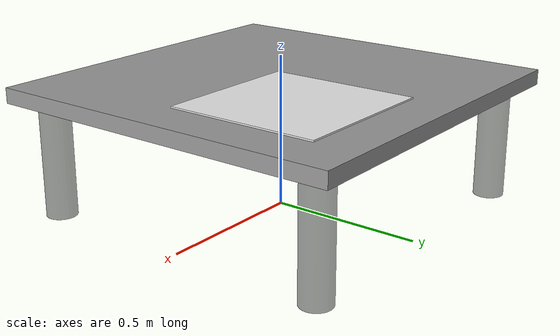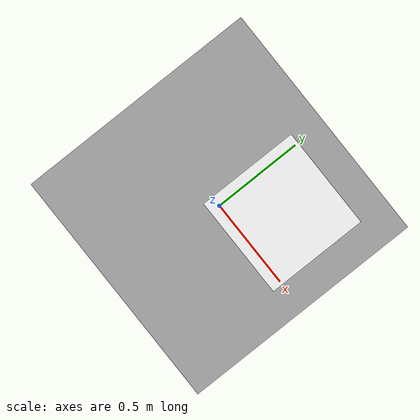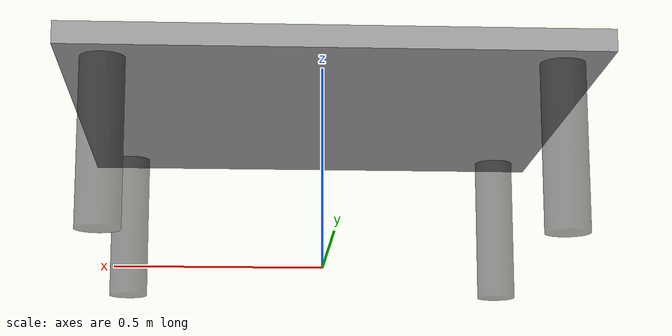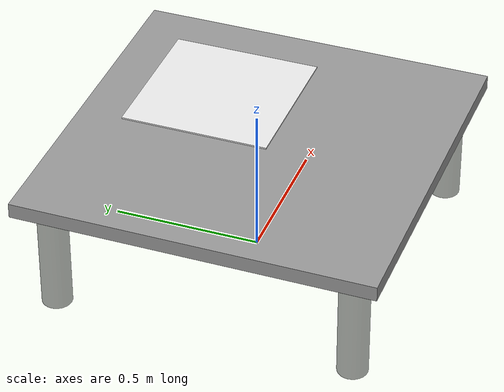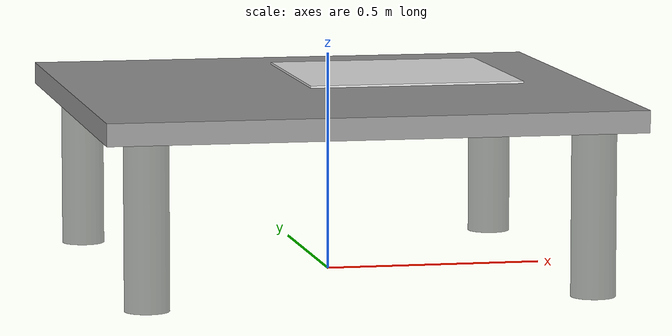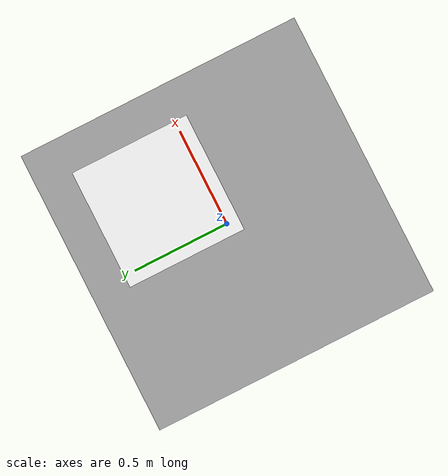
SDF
<?xml version="1.0" ?>
<sdf version="1.6">
  <model name="work_table">
    <static>true</static> <!-- Table and drop zone are static -->

    <!-- Table Link -->
    <link name="table">
      <!-- Tabletop -->
      <visual name="visual_tabletop">
        <geometry>
          <box>
            <size>1.2 1.2 0.05</size> <!-- Table dimensions -->
          </box>
        </geometry>
        <pose>0 0 0.4 0 0 0</pose> <!-- Table height -->
        <material>
          <script>
            <name>Gazebo/Grey</name>
          </script>
          <ambient>0.5 0.5 0.5 1</ambient>
          <diffuse>0.8 0.8 0.8 1</diffuse>
          <specular>0.2 0.2 0.2 1</specular>
        </material>
      </visual>
      <collision name="collision_tabletop">
        <geometry>
          <box>
            <size>1.2 1.2 0.05</size>
          </box>
        </geometry>
        <pose>0 0 0.4 0 0 0</pose>
      </collision>

      <!-- Table Legs -->
      <visual name="visual_leg_1">
        <geometry>
          <cylinder>
            <radius>0.05</radius> <!-- Leg radius -->
            <length>0.4</length> <!-- Leg height -->
          </cylinder>
        </geometry>
        <pose>-0.5 -0.5 0.2 0 0 0</pose> <!-- Back left corner -->
        <material>
          <script>
            <name>Gazebo/BlackTransparent</name>
          </script>
        </material>
      </visual>
      <visual name="visual_leg_2">
        <geometry>
          <cylinder>
            <radius>0.05</radius>
            <length>0.4</length>
          </cylinder>
        </geometry>
        <pose>0.5 -0.5 0.2 0 0 0</pose> <!-- Back right corner -->
        <material>
          <script>
            <name>Gazebo/BlackTransparent</name>
          </script>
        </material>
      </visual>
      <visual name="visual_leg_3">
        <geometry>
          <cylinder>
            <radius>0.05</radius>
            <length>0.4</length>
          </cylinder>
        </geometry>
        <pose>-0.5 0.5 0.2 0 0 0</pose> <!-- Front left corner -->
        <material>
          <script>
            <name>Gazebo/BlackTransparent</name>
          </script>
        </material>
      </visual>
      <visual name="visual_leg_4">
        <geometry>
          <cylinder>
            <radius>0.05</radius>
            <length>0.4</length>
          </cylinder>
        </geometry>
        <pose>0.5 0.5 0.2 0 0 0</pose> <!-- Front right corner -->
        <material>
          <script>
            <name>Gazebo/BlackTransparent</name>
          </script>
        </material>
      </visual>

      <!-- Drop Zone -->
      <visual name="visual_drop_zone">
        <geometry>
          <box>
            <size>0.5 0.5 0.01</size> <!-- Drop zone dimensions -->
          </box>
        </geometry>
        <pose>0.2 0.2 0.425 0 0 0</pose> <!-- Positioned at the right corner -->
        <material>
          <script>
            <name>Gazebo/White</name>
          </script>
          <ambient>1 1 1 1</ambient> <!-- White appearance -->
          <diffuse>1 1 1 1</diffuse>
          <specular>0.3 0.3 0.3 1</specular>
        </material>
      </visual>
    </link>
  </model>
</sdf>
